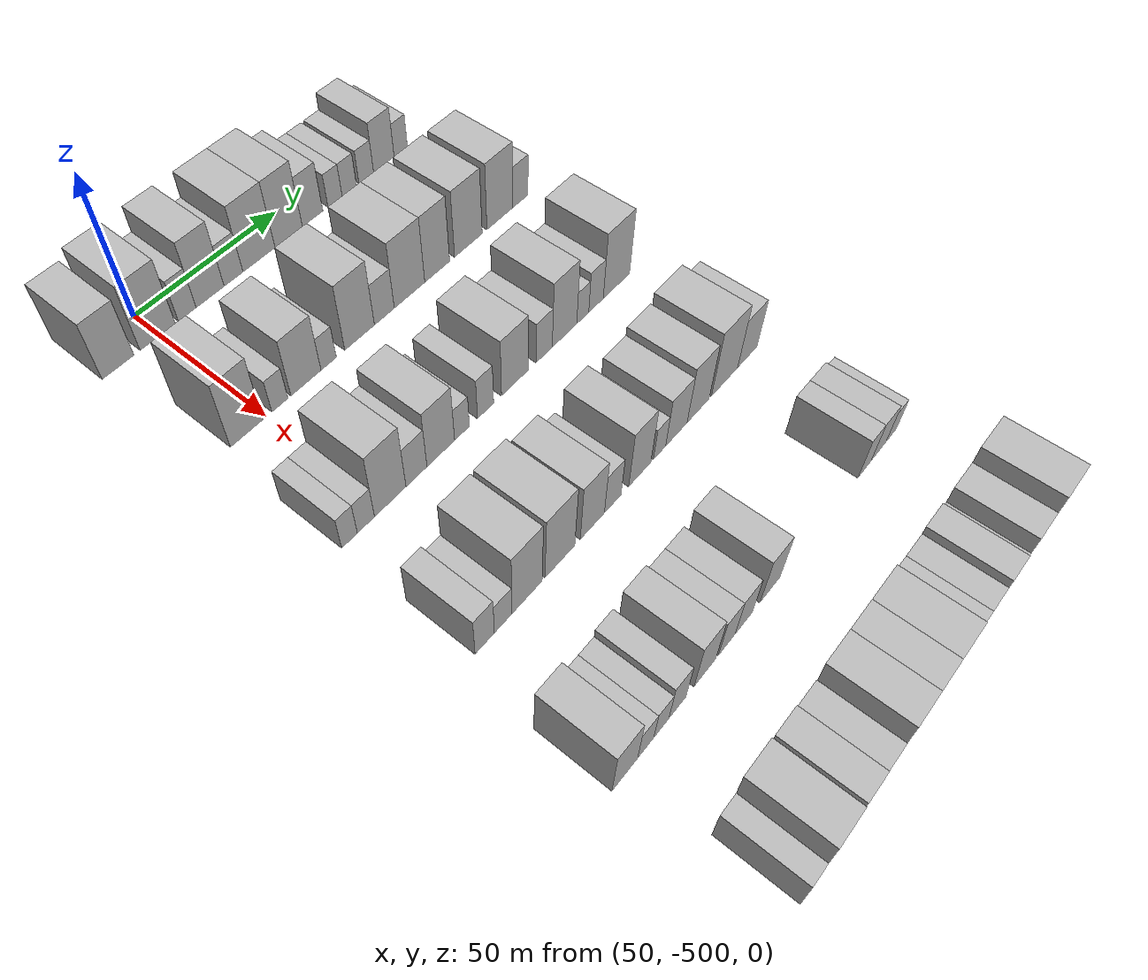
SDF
<sdf version="1.6">
 <world name="default">
  <model name="building_13">
   <static>1</static>
   <pose>50.0000 -513.2922 0 0.000000 0.000000 0.000000</pose>
   <link name="link">
    <pose>0 0 10.50 0 0 0</pose>
    <collision name="collision"><geometry><box><size>20.0000 10.0668 21.0000</size></box></geometry></collision>
    <visual name="visual">
     <cast_shadows>0</cast_shadows>
     <geometry><box><size>20.0000 10.0668 21.0000</size></box></geometry>
     <material>
      <script>
       <uri>model://HANNAS_wall/materials/scripts</uri>
       <uri>model://HANNAS_wall/materials/textures</uri>
       <name>vrc/HANNAS_wall</name>
      </script>
     </material>
    </visual>
   </link>
  </model>
  <model name="building_14">
   <static>1</static>
   <pose>50.0000 -500.4689 0 0.000000 0.000000 0.000000</pose>
   <link name="link">
    <pose>0 0 12.00 0 0 0</pose>
    <collision name="collision"><geometry><box><size>20.0000 11.5798 24.0000</size></box></geometry></collision>
    <visual name="visual">
     <cast_shadows>0</cast_shadows>
     <geometry><box><size>20.0000 11.5798 24.0000</size></box></geometry>
     <material>
      <script>
       <uri>model://HANNAS_wall/materials/scripts</uri>
       <uri>model://HANNAS_wall/materials/textures</uri>
       <name>vrc/HANNAS_wall</name>
      </script>
     </material>
    </visual>
   </link>
  </model>
  <model name="building_15">
   <static>1</static>
   <pose>50.0000 -490.6699 0 0.000000 0.000000 0.000000</pose>
   <link name="link">
    <pose>0 0 7.50 0 0 0</pose>
    <collision name="collision"><geometry><box><size>20.0000 6.0181 15.0000</size></box></geometry></collision>
    <visual name="visual">
     <cast_shadows>0</cast_shadows>
     <geometry><box><size>20.0000 6.0181 15.0000</size></box></geometry>
     <material>
      <script>
       <uri>model://HANNAS_wall/materials/scripts</uri>
       <uri>model://HANNAS_wall/materials/textures</uri>
       <name>vrc/HANNAS_wall</name>
      </script>
     </material>
    </visual>
   </link>
  </model>
  <model name="building_16">
   <static>1</static>
   <pose>50.0000 -482.7973 0 0.000000 0.000000 0.000000</pose>
   <link name="link">
    <pose>0 0 12.00 0 0 0</pose>
    <collision name="collision"><geometry><box><size>20.0000 9.7271 24.0000</size></box></geometry></collision>
    <visual name="visual">
     <cast_shadows>0</cast_shadows>
     <geometry><box><size>20.0000 9.7271 24.0000</size></box></geometry>
     <material>
      <script>
       <uri>model://HANNAS_wall/materials/scripts</uri>
       <uri>model://HANNAS_wall/materials/textures</uri>
       <name>vrc/HANNAS_wall</name>
      </script>
     </material>
    </visual>
   </link>
  </model>
  <model name="building_17">
   <static>1</static>
   <pose>50.0000 -474.5949 0 0.000000 0.000000 0.000000</pose>
   <link name="link">
    <pose>0 0 7.50 0 0 0</pose>
    <collision name="collision"><geometry><box><size>20.0000 6.6777 15.0000</size></box></geometry></collision>
    <visual name="visual">
     <cast_shadows>0</cast_shadows>
     <geometry><box><size>20.0000 6.6777 15.0000</size></box></geometry>
     <material>
      <script>
       <uri>model://HANNAS_wall/materials/scripts</uri>
       <uri>model://HANNAS_wall/materials/textures</uri>
       <name>vrc/HANNAS_wall</name>
      </script>
     </material>
    </visual>
   </link>
  </model>
  <model name="building_18">
   <static>1</static>
   <pose>50.0000 -465.4244 0 0.000000 0.000000 0.000000</pose>
   <link name="link">
    <pose>0 0 12.00 0 0 0</pose>
    <collision name="collision"><geometry><box><size>20.0000 11.6633 24.0000</size></box></geometry></collision>
    <visual name="visual">
     <cast_shadows>0</cast_shadows>
     <geometry><box><size>20.0000 11.6633 24.0000</size></box></geometry>
     <material>
      <script>
       <uri>model://HANNAS_wall/materials/scripts</uri>
       <uri>model://HANNAS_wall/materials/textures</uri>
       <name>vrc/HANNAS_wall</name>
      </script>
     </material>
    </visual>
   </link>
  </model>
  <model name="building_19">
   <static>1</static>
   <pose>50.0000 -454.4327 0 0.000000 0.000000 0.000000</pose>
   <link name="link">
    <pose>0 0 12.00 0 0 0</pose>
    <collision name="collision"><geometry><box><size>20.0000 10.3202 24.0000</size></box></geometry></collision>
    <visual name="visual">
     <cast_shadows>0</cast_shadows>
     <geometry><box><size>20.0000 10.3202 24.0000</size></box></geometry>
     <material>
      <script>
       <uri>model://HANNAS_wall/materials/scripts</uri>
       <uri>model://HANNAS_wall/materials/textures</uri>
       <name>vrc/HANNAS_wall</name>
      </script>
     </material>
    </visual>
   </link>
  </model>
  <model name="building_20">
   <static>1</static>
   <pose>50.0000 -445.3321 0 0.000000 0.000000 0.000000</pose>
   <link name="link">
    <pose>0 0 9.00 0 0 0</pose>
    <collision name="collision"><geometry><box><size>20.0000 7.8810 18.0000</size></box></geometry></collision>
    <visual name="visual">
     <cast_shadows>0</cast_shadows>
     <geometry><box><size>20.0000 7.8810 18.0000</size></box></geometry>
     <material>
      <script>
       <uri>model://HANNAS_wall/materials/scripts</uri>
       <uri>model://HANNAS_wall/materials/textures</uri>
       <name>vrc/HANNAS_wall</name>
      </script>
     </material>
    </visual>
   </link>
  </model>
  <model name="building_21">
   <static>1</static>
   <pose>50.0000 -436.5982 0 0.000000 0.000000 0.000000</pose>
   <link name="link">
    <pose>0 0 6.00 0 0 0</pose>
    <collision name="collision"><geometry><box><size>20.0000 5.5867 12.0000</size></box></geometry></collision>
    <visual name="visual">
     <cast_shadows>0</cast_shadows>
     <geometry><box><size>20.0000 5.5867 12.0000</size></box></geometry>
     <material>
      <script>
       <uri>model://HANNAS_wall/materials/scripts</uri>
       <uri>model://HANNAS_wall/materials/textures</uri>
       <name>vrc/HANNAS_wall</name>
      </script>
     </material>
    </visual>
   </link>
  </model>
  <model name="building_22">
   <static>1</static>
   <pose>50.0000 -430.9221 0 0.000000 0.000000 0.000000</pose>
   <link name="link">
    <pose>0 0 6.00 0 0 0</pose>
    <collision name="collision"><geometry><box><size>20.0000 5.7655 12.0000</size></box></geometry></collision>
    <visual name="visual">
     <cast_shadows>0</cast_shadows>
     <geometry><box><size>20.0000 5.7655 12.0000</size></box></geometry>
     <material>
      <script>
       <uri>model://HANNAS_wall/materials/scripts</uri>
       <uri>model://HANNAS_wall/materials/textures</uri>
       <name>vrc/HANNAS_wall</name>
      </script>
     </material>
    </visual>
   </link>
  </model>
  <model name="building_23">
   <static>1</static>
   <pose>50.0000 -424.0507 0 0.000000 0.000000 0.000000</pose>
   <link name="link">
    <pose>0 0 6.00 0 0 0</pose>
    <collision name="collision"><geometry><box><size>20.0000 5.9773 12.0000</size></box></geometry></collision>
    <visual name="visual">
     <cast_shadows>0</cast_shadows>
     <geometry><box><size>20.0000 5.9773 12.0000</size></box></geometry>
     <material>
      <script>
       <uri>model://HANNAS_wall/materials/scripts</uri>
       <uri>model://HANNAS_wall/materials/textures</uri>
       <name>vrc/HANNAS_wall</name>
      </script>
     </material>
    </visual>
   </link>
  </model>
  <model name="building_24">
   <static>1</static>
   <pose>50.0000 -416.7812 0 0.000000 0.000000 0.000000</pose>
   <link name="link">
    <pose>0 0 9.00 0 0 0</pose>
    <collision name="collision"><geometry><box><size>20.0000 8.5616 18.0000</size></box></geometry></collision>
    <visual name="visual">
     <cast_shadows>0</cast_shadows>
     <geometry><box><size>20.0000 8.5616 18.0000</size></box></geometry>
     <material>
      <script>
       <uri>model://HANNAS_wall/materials/scripts</uri>
       <uri>model://HANNAS_wall/materials/textures</uri>
       <name>vrc/HANNAS_wall</name>
      </script>
     </material>
    </visual>
   </link>
  </model>
  <model name="building_25">
   <static>1</static>
   <pose>50.0000 -409.6881 0 0.000000 0.000000 0.000000</pose>
   <link name="link">
    <pose>0 0 6.00 0 0 0</pose>
    <collision name="collision"><geometry><box><size>20.0000 5.6246 12.0000</size></box></geometry></collision>
    <visual name="visual">
     <cast_shadows>0</cast_shadows>
     <geometry><box><size>20.0000 5.6246 12.0000</size></box></geometry>
     <material>
      <script>
       <uri>model://HANNAS_wall/materials/scripts</uri>
       <uri>model://HANNAS_wall/materials/textures</uri>
       <name>vrc/HANNAS_wall</name>
      </script>
     </material>
    </visual>
   </link>
  </model>
  <model name="building_149">
   <static>1</static>
   <pose>90.0000 -506.4445 0 0.000000 0.000000 0.000000</pose>
   <link name="link">
    <pose>0 0 12.00 0 0 0</pose>
    <collision name="collision"><geometry><box><size>20.0000 10.4955 24.0000</size></box></geometry></collision>
    <visual name="visual">
     <cast_shadows>0</cast_shadows>
     <geometry><box><size>20.0000 10.4955 24.0000</size></box></geometry>
     <material>
      <script>
       <uri>model://HANNAS_wall/materials/scripts</uri>
       <uri>model://HANNAS_wall/materials/textures</uri>
       <name>vrc/HANNAS_wall</name>
      </script>
     </material>
    </visual>
   </link>
  </model>
  <model name="building_150">
   <static>1</static>
   <pose>90.0000 -495.4937 0 0.000000 0.000000 0.000000</pose>
   <link name="link">
    <pose>0 0 6.00 0 0 0</pose>
    <collision name="collision"><geometry><box><size>20.0000 5.4061 12.0000</size></box></geometry></collision>
    <visual name="visual">
     <cast_shadows>0</cast_shadows>
     <geometry><box><size>20.0000 5.4061 12.0000</size></box></geometry>
     <material>
      <script>
       <uri>model://HANNAS_wall/materials/scripts</uri>
       <uri>model://HANNAS_wall/materials/textures</uri>
       <name>vrc/HANNAS_wall</name>
      </script>
     </material>
    </visual>
   </link>
  </model>
  <model name="building_151">
   <static>1</static>
   <pose>90.0000 -486.6081 0 0.000000 0.000000 0.000000</pose>
   <link name="link">
    <pose>0 0 10.50 0 0 0</pose>
    <collision name="collision"><geometry><box><size>20.0000 10.3650 21.0000</size></box></geometry></collision>
    <visual name="visual">
     <cast_shadows>0</cast_shadows>
     <geometry><box><size>20.0000 10.3650 21.0000</size></box></geometry>
     <material>
      <script>
       <uri>model://HANNAS_wall/materials/scripts</uri>
       <uri>model://HANNAS_wall/materials/textures</uri>
       <name>vrc/HANNAS_wall</name>
      </script>
     </material>
    </visual>
   </link>
  </model>
  <model name="building_152">
   <static>1</static>
   <pose>90.0000 -478.7184 0 0.000000 0.000000 0.000000</pose>
   <link name="link">
    <pose>0 0 6.00 0 0 0</pose>
    <collision name="collision"><geometry><box><size>20.0000 5.4144 12.0000</size></box></geometry></collision>
    <visual name="visual">
     <cast_shadows>0</cast_shadows>
     <geometry><box><size>20.0000 5.4144 12.0000</size></box></geometry>
     <material>
      <script>
       <uri>model://HANNAS_wall/materials/scripts</uri>
       <uri>model://HANNAS_wall/materials/textures</uri>
       <name>vrc/HANNAS_wall</name>
      </script>
     </material>
    </visual>
   </link>
  </model>
  <model name="building_153">
   <static>1</static>
   <pose>90.0000 -467.5910 0 0.000000 0.000000 0.000000</pose>
   <link name="link">
    <pose>0 0 12.00 0 0 0</pose>
    <collision name="collision"><geometry><box><size>20.0000 10.8404 24.0000</size></box></geometry></collision>
    <visual name="visual">
     <cast_shadows>0</cast_shadows>
     <geometry><box><size>20.0000 10.8404 24.0000</size></box></geometry>
     <material>
      <script>
       <uri>model://HANNAS_wall/materials/scripts</uri>
       <uri>model://HANNAS_wall/materials/textures</uri>
       <name>vrc/HANNAS_wall</name>
      </script>
     </material>
    </visual>
   </link>
  </model>
  <model name="building_154">
   <static>1</static>
   <pose>90.0000 -458.4477 0 0.000000 0.000000 0.000000</pose>
   <link name="link">
    <pose>0 0 7.50 0 0 0</pose>
    <collision name="collision"><geometry><box><size>20.0000 7.4461 15.0000</size></box></geometry></collision>
    <visual name="visual">
     <cast_shadows>0</cast_shadows>
     <geometry><box><size>20.0000 7.4461 15.0000</size></box></geometry>
     <material>
      <script>
       <uri>model://HANNAS_wall/materials/scripts</uri>
       <uri>model://HANNAS_wall/materials/textures</uri>
       <name>vrc/HANNAS_wall</name>
      </script>
     </material>
    </visual>
   </link>
  </model>
  <model name="building_155">
   <static>1</static>
   <pose>90.0000 -448.8370 0 0.000000 0.000000 0.000000</pose>
   <link name="link">
    <pose>0 0 12.00 0 0 0</pose>
    <collision name="collision"><geometry><box><size>20.0000 11.7753 24.0000</size></box></geometry></collision>
    <visual name="visual">
     <cast_shadows>0</cast_shadows>
     <geometry><box><size>20.0000 11.7753 24.0000</size></box></geometry>
     <material>
      <script>
       <uri>model://HANNAS_wall/materials/scripts</uri>
       <uri>model://HANNAS_wall/materials/textures</uri>
       <name>vrc/HANNAS_wall</name>
      </script>
     </material>
    </visual>
   </link>
  </model>
  <model name="building_156">
   <static>1</static>
   <pose>90.0000 -438.0032 0 0.000000 0.000000 0.000000</pose>
   <link name="link">
    <pose>0 0 12.00 0 0 0</pose>
    <collision name="collision"><geometry><box><size>20.0000 9.8923 24.0000</size></box></geometry></collision>
    <visual name="visual">
     <cast_shadows>0</cast_shadows>
     <geometry><box><size>20.0000 9.8923 24.0000</size></box></geometry>
     <material>
      <script>
       <uri>model://HANNAS_wall/materials/scripts</uri>
       <uri>model://HANNAS_wall/materials/textures</uri>
       <name>vrc/HANNAS_wall</name>
      </script>
     </material>
    </visual>
   </link>
  </model>
  <model name="building_157">
   <static>1</static>
   <pose>90.0000 -425.3651 0 0.000000 0.000000 0.000000</pose>
   <link name="link">
    <pose>0 0 12.00 0 0 0</pose>
    <collision name="collision"><geometry><box><size>20.0000 11.3839 24.0000</size></box></geometry></collision>
    <visual name="visual">
     <cast_shadows>0</cast_shadows>
     <geometry><box><size>20.0000 11.3839 24.0000</size></box></geometry>
     <material>
      <script>
       <uri>model://HANNAS_wall/materials/scripts</uri>
       <uri>model://HANNAS_wall/materials/textures</uri>
       <name>vrc/HANNAS_wall</name>
      </script>
     </material>
    </visual>
   </link>
  </model>
  <model name="building_158">
   <static>1</static>
   <pose>90.0000 -412.0996 0 0.000000 0.000000 0.000000</pose>
   <link name="link">
    <pose>0 0 12.00 0 0 0</pose>
    <collision name="collision"><geometry><box><size>20.0000 11.1470 24.0000</size></box></geometry></collision>
    <visual name="visual">
     <cast_shadows>0</cast_shadows>
     <geometry><box><size>20.0000 11.1470 24.0000</size></box></geometry>
     <material>
      <script>
       <uri>model://HANNAS_wall/materials/scripts</uri>
       <uri>model://HANNAS_wall/materials/textures</uri>
       <name>vrc/HANNAS_wall</name>
      </script>
     </material>
    </visual>
   </link>
  </model>
  <model name="building_159">
   <static>1</static>
   <pose>90.0000 -403.2334 0 0.000000 0.000000 0.000000</pose>
   <link name="link">
    <pose>0 0 7.50 0 0 0</pose>
    <collision name="collision"><geometry><box><size>20.0000 6.5855 15.0000</size></box></geometry></collision>
    <visual name="visual">
     <cast_shadows>0</cast_shadows>
     <geometry><box><size>20.0000 6.5855 15.0000</size></box></geometry>
     <material>
      <script>
       <uri>model://HANNAS_wall/materials/scripts</uri>
       <uri>model://HANNAS_wall/materials/textures</uri>
       <name>vrc/HANNAS_wall</name>
      </script>
     </material>
    </visual>
   </link>
  </model>
  <model name="building_289">
   <static>1</static>
   <pose>130.0000 -511.7369 0 0.000000 0.000000 0.000000</pose>
   <link name="link">
    <pose>0 0 6.00 0 0 0</pose>
    <collision name="collision"><geometry><box><size>20.0000 5.0242 12.0000</size></box></geometry></collision>
    <visual name="visual">
     <cast_shadows>0</cast_shadows>
     <geometry><box><size>20.0000 5.0242 12.0000</size></box></geometry>
     <material>
      <script>
       <uri>model://HANNAS_wall/materials/scripts</uri>
       <uri>model://HANNAS_wall/materials/textures</uri>
       <name>vrc/HANNAS_wall</name>
      </script>
     </material>
    </visual>
   </link>
  </model>
  <model name="building_290">
   <static>1</static>
   <pose>130.0000 -506.4150 0 0.000000 0.000000 0.000000</pose>
   <link name="link">
    <pose>0 0 6.00 0 0 0</pose>
    <collision name="collision"><geometry><box><size>20.0000 5.6196 12.0000</size></box></geometry></collision>
    <visual name="visual">
     <cast_shadows>0</cast_shadows>
     <geometry><box><size>20.0000 5.6196 12.0000</size></box></geometry>
     <material>
      <script>
       <uri>model://HANNAS_wall/materials/scripts</uri>
       <uri>model://HANNAS_wall/materials/textures</uri>
       <name>vrc/HANNAS_wall</name>
      </script>
     </material>
    </visual>
   </link>
  </model>
  <model name="building_291">
   <static>1</static>
   <pose>130.0000 -498.3306 0 0.000000 0.000000 0.000000</pose>
   <link name="link">
    <pose>0 0 12.00 0 0 0</pose>
    <collision name="collision"><geometry><box><size>20.0000 10.5493 24.0000</size></box></geometry></collision>
    <visual name="visual">
     <cast_shadows>0</cast_shadows>
     <geometry><box><size>20.0000 10.5493 24.0000</size></box></geometry>
     <material>
      <script>
       <uri>model://HANNAS_wall/materials/scripts</uri>
       <uri>model://HANNAS_wall/materials/textures</uri>
       <name>vrc/HANNAS_wall</name>
      </script>
     </material>
    </visual>
   </link>
  </model>
  <model name="building_292">
   <static>1</static>
   <pose>130.0000 -489.4252 0 0.000000 0.000000 0.000000</pose>
   <link name="link">
    <pose>0 0 7.50 0 0 0</pose>
    <collision name="collision"><geometry><box><size>20.0000 7.2615 15.0000</size></box></geometry></collision>
    <visual name="visual">
     <cast_shadows>0</cast_shadows>
     <geometry><box><size>20.0000 7.2615 15.0000</size></box></geometry>
     <material>
      <script>
       <uri>model://HANNAS_wall/materials/scripts</uri>
       <uri>model://HANNAS_wall/materials/textures</uri>
       <name>vrc/HANNAS_wall</name>
      </script>
     </material>
    </visual>
   </link>
  </model>
  <model name="building_293">
   <static>1</static>
   <pose>130.0000 -480.8790 0 0.000000 0.000000 0.000000</pose>
   <link name="link">
    <pose>0 0 10.50 0 0 0</pose>
    <collision name="collision"><geometry><box><size>20.0000 9.8309 21.0000</size></box></geometry></collision>
    <visual name="visual">
     <cast_shadows>0</cast_shadows>
     <geometry><box><size>20.0000 9.8309 21.0000</size></box></geometry>
     <material>
      <script>
       <uri>model://HANNAS_wall/materials/scripts</uri>
       <uri>model://HANNAS_wall/materials/textures</uri>
       <name>vrc/HANNAS_wall</name>
      </script>
     </material>
    </visual>
   </link>
  </model>
  <model name="building_294">
   <static>1</static>
   <pose>130.0000 -473.2866 0 0.000000 0.000000 0.000000</pose>
   <link name="link">
    <pose>0 0 6.00 0 0 0</pose>
    <collision name="collision"><geometry><box><size>20.0000 5.3539 12.0000</size></box></geometry></collision>
    <visual name="visual">
     <cast_shadows>0</cast_shadows>
     <geometry><box><size>20.0000 5.3539 12.0000</size></box></geometry>
     <material>
      <script>
       <uri>model://HANNAS_wall/materials/scripts</uri>
       <uri>model://HANNAS_wall/materials/textures</uri>
       <name>vrc/HANNAS_wall</name>
      </script>
     </material>
    </visual>
   </link>
  </model>
  <model name="building_295">
   <static>1</static>
   <pose>130.0000 -464.5942 0 0.000000 0.000000 0.000000</pose>
   <link name="link">
    <pose>0 0 7.50 0 0 0</pose>
    <collision name="collision"><geometry><box><size>20.0000 6.0310 15.0000</size></box></geometry></collision>
    <visual name="visual">
     <cast_shadows>0</cast_shadows>
     <geometry><box><size>20.0000 6.0310 15.0000</size></box></geometry>
     <material>
      <script>
       <uri>model://HANNAS_wall/materials/scripts</uri>
       <uri>model://HANNAS_wall/materials/textures</uri>
       <name>vrc/HANNAS_wall</name>
      </script>
     </material>
    </visual>
   </link>
  </model>
  <model name="building_296">
   <static>1</static>
   <pose>130.0000 -453.3522 0 0.000000 0.000000 0.000000</pose>
   <link name="link">
    <pose>0 0 10.50 0 0 0</pose>
    <collision name="collision"><geometry><box><size>20.0000 10.4529 21.0000</size></box></geometry></collision>
    <visual name="visual">
     <cast_shadows>0</cast_shadows>
     <geometry><box><size>20.0000 10.4529 21.0000</size></box></geometry>
     <material>
      <script>
       <uri>model://HANNAS_wall/materials/scripts</uri>
       <uri>model://HANNAS_wall/materials/textures</uri>
       <name>vrc/HANNAS_wall</name>
      </script>
     </material>
    </visual>
   </link>
  </model>
  <model name="building_297">
   <static>1</static>
   <pose>130.0000 -441.8769 0 0.000000 0.000000 0.000000</pose>
   <link name="link">
    <pose>0 0 7.50 0 0 0</pose>
    <collision name="collision"><geometry><box><size>20.0000 6.4976 15.0000</size></box></geometry></collision>
    <visual name="visual">
     <cast_shadows>0</cast_shadows>
     <geometry><box><size>20.0000 6.4976 15.0000</size></box></geometry>
     <material>
      <script>
       <uri>model://HANNAS_wall/materials/scripts</uri>
       <uri>model://HANNAS_wall/materials/textures</uri>
       <name>vrc/HANNAS_wall</name>
      </script>
     </material>
    </visual>
   </link>
  </model>
  <model name="building_298">
   <static>1</static>
   <pose>130.0000 -433.5848 0 0.000000 0.000000 0.000000</pose>
   <link name="link">
    <pose>0 0 12.00 0 0 0</pose>
    <collision name="collision"><geometry><box><size>20.0000 10.0865 24.0000</size></box></geometry></collision>
    <visual name="visual">
     <cast_shadows>0</cast_shadows>
     <geometry><box><size>20.0000 10.0865 24.0000</size></box></geometry>
     <material>
      <script>
       <uri>model://HANNAS_wall/materials/scripts</uri>
       <uri>model://HANNAS_wall/materials/textures</uri>
       <name>vrc/HANNAS_wall</name>
      </script>
     </material>
    </visual>
   </link>
  </model>
  <model name="building_299">
   <static>1</static>
   <pose>130.0000 -426.0183 0 0.000000 0.000000 0.000000</pose>
   <link name="link">
    <pose>0 0 6.00 0 0 0</pose>
    <collision name="collision"><geometry><box><size>20.0000 5.0465 12.0000</size></box></geometry></collision>
    <visual name="visual">
     <cast_shadows>0</cast_shadows>
     <geometry><box><size>20.0000 5.0465 12.0000</size></box></geometry>
     <material>
      <script>
       <uri>model://HANNAS_wall/materials/scripts</uri>
       <uri>model://HANNAS_wall/materials/textures</uri>
       <name>vrc/HANNAS_wall</name>
      </script>
     </material>
    </visual>
   </link>
  </model>
  <model name="building_300">
   <static>1</static>
   <pose>130.0000 -420.3843 0 0.000000 0.000000 0.000000</pose>
   <link name="link">
    <pose>0 0 7.50 0 0 0</pose>
    <collision name="collision"><geometry><box><size>20.0000 6.2215 15.0000</size></box></geometry></collision>
    <visual name="visual">
     <cast_shadows>0</cast_shadows>
     <geometry><box><size>20.0000 6.2215 15.0000</size></box></geometry>
     <material>
      <script>
       <uri>model://HANNAS_wall/materials/scripts</uri>
       <uri>model://HANNAS_wall/materials/textures</uri>
       <name>vrc/HANNAS_wall</name>
      </script>
     </material>
    </visual>
   </link>
  </model>
  <model name="building_301">
   <static>1</static>
   <pose>130.0000 -411.5035 0 0.000000 0.000000 0.000000</pose>
   <link name="link">
    <pose>0 0 12.00 0 0 0</pose>
    <collision name="collision"><geometry><box><size>20.0000 11.5402 24.0000</size></box></geometry></collision>
    <visual name="visual">
     <cast_shadows>0</cast_shadows>
     <geometry><box><size>20.0000 11.5402 24.0000</size></box></geometry>
     <material>
      <script>
       <uri>model://HANNAS_wall/materials/scripts</uri>
       <uri>model://HANNAS_wall/materials/textures</uri>
       <name>vrc/HANNAS_wall</name>
      </script>
     </material>
    </visual>
   </link>
  </model>
  <model name="building_430">
   <static>1</static>
   <pose>170.0000 -511.2489 0 0.000000 0.000000 0.000000</pose>
   <link name="link">
    <pose>0 0 7.50 0 0 0</pose>
    <collision name="collision"><geometry><box><size>20.0000 6.3063 15.0000</size></box></geometry></collision>
    <visual name="visual">
     <cast_shadows>0</cast_shadows>
     <geometry><box><size>20.0000 6.3063 15.0000</size></box></geometry>
     <material>
      <script>
       <uri>model://HANNAS_wall/materials/scripts</uri>
       <uri>model://HANNAS_wall/materials/textures</uri>
       <name>vrc/HANNAS_wall</name>
      </script>
     </material>
    </visual>
   </link>
  </model>
  <model name="building_431">
   <static>1</static>
   <pose>170.0000 -505.1378 0 0.000000 0.000000 0.000000</pose>
   <link name="link">
    <pose>0 0 6.00 0 0 0</pose>
    <collision name="collision"><geometry><box><size>20.0000 5.9160 12.0000</size></box></geometry></collision>
    <visual name="visual">
     <cast_shadows>0</cast_shadows>
     <geometry><box><size>20.0000 5.9160 12.0000</size></box></geometry>
     <material>
      <script>
       <uri>model://HANNAS_wall/materials/scripts</uri>
       <uri>model://HANNAS_wall/materials/textures</uri>
       <name>vrc/HANNAS_wall</name>
      </script>
     </material>
    </visual>
   </link>
  </model>
  <model name="building_432">
   <static>1</static>
   <pose>170.0000 -497.0082 0 0.000000 0.000000 0.000000</pose>
   <link name="link">
    <pose>0 0 12.00 0 0 0</pose>
    <collision name="collision"><geometry><box><size>20.0000 10.3432 24.0000</size></box></geometry></collision>
    <visual name="visual">
     <cast_shadows>0</cast_shadows>
     <geometry><box><size>20.0000 10.3432 24.0000</size></box></geometry>
     <material>
      <script>
       <uri>model://HANNAS_wall/materials/scripts</uri>
       <uri>model://HANNAS_wall/materials/textures</uri>
       <name>vrc/HANNAS_wall</name>
      </script>
     </material>
    </visual>
   </link>
  </model>
  <model name="building_433">
   <static>1</static>
   <pose>170.0000 -485.4924 0 0.000000 0.000000 0.000000</pose>
   <link name="link">
    <pose>0 0 12.00 0 0 0</pose>
    <collision name="collision"><geometry><box><size>20.0000 10.6883 24.0000</size></box></geometry></collision>
    <visual name="visual">
     <cast_shadows>0</cast_shadows>
     <geometry><box><size>20.0000 10.6883 24.0000</size></box></geometry>
     <material>
      <script>
       <uri>model://HANNAS_wall/materials/scripts</uri>
       <uri>model://HANNAS_wall/materials/textures</uri>
       <name>vrc/HANNAS_wall</name>
      </script>
     </material>
    </visual>
   </link>
  </model>
  <model name="building_434">
   <static>1</static>
   <pose>170.0000 -473.6528 0 0.000000 0.000000 0.000000</pose>
   <link name="link">
    <pose>0 0 10.50 0 0 0</pose>
    <collision name="collision"><geometry><box><size>20.0000 8.9911 21.0000</size></box></geometry></collision>
    <visual name="visual">
     <cast_shadows>0</cast_shadows>
     <geometry><box><size>20.0000 8.9911 21.0000</size></box></geometry>
     <material>
      <script>
       <uri>model://HANNAS_wall/materials/scripts</uri>
       <uri>model://HANNAS_wall/materials/textures</uri>
       <name>vrc/HANNAS_wall</name>
      </script>
     </material>
    </visual>
   </link>
  </model>
  <model name="building_435">
   <static>1</static>
   <pose>170.0000 -465.9831 0 0.000000 0.000000 0.000000</pose>
   <link name="link">
    <pose>0 0 7.50 0 0 0</pose>
    <collision name="collision"><geometry><box><size>20.0000 6.3483 15.0000</size></box></geometry></collision>
    <visual name="visual">
     <cast_shadows>0</cast_shadows>
     <geometry><box><size>20.0000 6.3483 15.0000</size></box></geometry>
     <material>
      <script>
       <uri>model://HANNAS_wall/materials/scripts</uri>
       <uri>model://HANNAS_wall/materials/textures</uri>
       <name>vrc/HANNAS_wall</name>
      </script>
     </material>
    </visual>
   </link>
  </model>
  <model name="building_436">
   <static>1</static>
   <pose>170.0000 -455.4155 0 0.000000 0.000000 0.000000</pose>
   <link name="link">
    <pose>0 0 10.50 0 0 0</pose>
    <collision name="collision"><geometry><box><size>20.0000 8.7869 21.0000</size></box></geometry></collision>
    <visual name="visual">
     <cast_shadows>0</cast_shadows>
     <geometry><box><size>20.0000 8.7869 21.0000</size></box></geometry>
     <material>
      <script>
       <uri>model://HANNAS_wall/materials/scripts</uri>
       <uri>model://HANNAS_wall/materials/textures</uri>
       <name>vrc/HANNAS_wall</name>
      </script>
     </material>
    </visual>
   </link>
  </model>
  <model name="building_437">
   <static>1</static>
   <pose>170.0000 -447.5308 0 0.000000 0.000000 0.000000</pose>
   <link name="link">
    <pose>0 0 6.00 0 0 0</pose>
    <collision name="collision"><geometry><box><size>20.0000 4.9824 12.0000</size></box></geometry></collision>
    <visual name="visual">
     <cast_shadows>0</cast_shadows>
     <geometry><box><size>20.0000 4.9824 12.0000</size></box></geometry>
     <material>
      <script>
       <uri>model://HANNAS_wall/materials/scripts</uri>
       <uri>model://HANNAS_wall/materials/textures</uri>
       <name>vrc/HANNAS_wall</name>
      </script>
     </material>
    </visual>
   </link>
  </model>
  <model name="building_438">
   <static>1</static>
   <pose>170.0000 -440.5748 0 0.000000 0.000000 0.000000</pose>
   <link name="link">
    <pose>0 0 9.00 0 0 0</pose>
    <collision name="collision"><geometry><box><size>20.0000 8.9297 18.0000</size></box></geometry></collision>
    <visual name="visual">
     <cast_shadows>0</cast_shadows>
     <geometry><box><size>20.0000 8.9297 18.0000</size></box></geometry>
     <material>
      <script>
       <uri>model://HANNAS_wall/materials/scripts</uri>
       <uri>model://HANNAS_wall/materials/textures</uri>
       <name>vrc/HANNAS_wall</name>
      </script>
     </material>
    </visual>
   </link>
  </model>
  <model name="building_439">
   <static>1</static>
   <pose>170.0000 -431.3878 0 0.000000 0.000000 0.000000</pose>
   <link name="link">
    <pose>0 0 10.50 0 0 0</pose>
    <collision name="collision"><geometry><box><size>20.0000 9.4444 21.0000</size></box></geometry></collision>
    <visual name="visual">
     <cast_shadows>0</cast_shadows>
     <geometry><box><size>20.0000 9.4444 21.0000</size></box></geometry>
     <material>
      <script>
       <uri>model://HANNAS_wall/materials/scripts</uri>
       <uri>model://HANNAS_wall/materials/textures</uri>
       <name>vrc/HANNAS_wall</name>
      </script>
     </material>
    </visual>
   </link>
  </model>
  <model name="building_440">
   <static>1</static>
   <pose>170.0000 -419.8407 0 0.000000 0.000000 0.000000</pose>
   <link name="link">
    <pose>0 0 12.00 0 0 0</pose>
    <collision name="collision"><geometry><box><size>20.0000 11.6497 24.0000</size></box></geometry></collision>
    <visual name="visual">
     <cast_shadows>0</cast_shadows>
     <geometry><box><size>20.0000 11.6497 24.0000</size></box></geometry>
     <material>
      <script>
       <uri>model://HANNAS_wall/materials/scripts</uri>
       <uri>model://HANNAS_wall/materials/textures</uri>
       <name>vrc/HANNAS_wall</name>
      </script>
     </material>
    </visual>
   </link>
  </model>
  <model name="building_441">
   <static>1</static>
   <pose>170.0000 -409.5839 0 0.000000 0.000000 0.000000</pose>
   <link name="link">
    <pose>0 0 9.00 0 0 0</pose>
    <collision name="collision"><geometry><box><size>20.0000 8.8640 18.0000</size></box></geometry></collision>
    <visual name="visual">
     <cast_shadows>0</cast_shadows>
     <geometry><box><size>20.0000 8.8640 18.0000</size></box></geometry>
     <material>
      <script>
       <uri>model://HANNAS_wall/materials/scripts</uri>
       <uri>model://HANNAS_wall/materials/textures</uri>
       <name>vrc/HANNAS_wall</name>
      </script>
     </material>
    </visual>
   </link>
  </model>
  <model name="building_562">
   <static>1</static>
   <pose>210.0000 -514.7896 0 0.000000 0.000000 0.000000</pose>
   <link name="link">
    <pose>0 0 9.00 0 0 0</pose>
    <collision name="collision"><geometry><box><size>20.0000 8.5073 18.0000</size></box></geometry></collision>
    <visual name="visual">
     <cast_shadows>0</cast_shadows>
     <geometry><box><size>20.0000 8.5073 18.0000</size></box></geometry>
     <material>
      <script>
       <uri>model://HANNAS_wall/materials/scripts</uri>
       <uri>model://HANNAS_wall/materials/textures</uri>
       <name>vrc/HANNAS_wall</name>
      </script>
     </material>
    </visual>
   </link>
  </model>
  <model name="building_563">
   <static>1</static>
   <pose>210.0000 -507.7759 0 0.000000 0.000000 0.000000</pose>
   <link name="link">
    <pose>0 0 6.00 0 0 0</pose>
    <collision name="collision"><geometry><box><size>20.0000 5.5200 12.0000</size></box></geometry></collision>
    <visual name="visual">
     <cast_shadows>0</cast_shadows>
     <geometry><box><size>20.0000 5.5200 12.0000</size></box></geometry>
     <material>
      <script>
       <uri>model://HANNAS_wall/materials/scripts</uri>
       <uri>model://HANNAS_wall/materials/textures</uri>
       <name>vrc/HANNAS_wall</name>
      </script>
     </material>
    </visual>
   </link>
  </model>
  <model name="building_564">
   <static>1</static>
   <pose>210.0000 -502.3978 0 0.000000 0.000000 0.000000</pose>
   <link name="link">
    <pose>0 0 6.00 0 0 0</pose>
    <collision name="collision"><geometry><box><size>20.0000 5.2363 12.0000</size></box></geometry></collision>
    <visual name="visual">
     <cast_shadows>0</cast_shadows>
     <geometry><box><size>20.0000 5.2363 12.0000</size></box></geometry>
     <material>
      <script>
       <uri>model://HANNAS_wall/materials/scripts</uri>
       <uri>model://HANNAS_wall/materials/textures</uri>
       <name>vrc/HANNAS_wall</name>
      </script>
     </material>
    </visual>
   </link>
  </model>
  <model name="building_565">
   <static>1</static>
   <pose>210.0000 -496.7370 0 0.000000 0.000000 0.000000</pose>
   <link name="link">
    <pose>0 0 7.50 0 0 0</pose>
    <collision name="collision"><geometry><box><size>20.0000 6.0853 15.0000</size></box></geometry></collision>
    <visual name="visual">
     <cast_shadows>0</cast_shadows>
     <geometry><box><size>20.0000 6.0853 15.0000</size></box></geometry>
     <material>
      <script>
       <uri>model://HANNAS_wall/materials/scripts</uri>
       <uri>model://HANNAS_wall/materials/textures</uri>
       <name>vrc/HANNAS_wall</name>
      </script>
     </material>
    </visual>
   </link>
  </model>
  <model name="building_566">
   <static>1</static>
   <pose>210.0000 -486.7022 0 0.000000 0.000000 0.000000</pose>
   <link name="link">
    <pose>0 0 9.00 0 0 0</pose>
    <collision name="collision"><geometry><box><size>20.0000 7.9844 18.0000</size></box></geometry></collision>
    <visual name="visual">
     <cast_shadows>0</cast_shadows>
     <geometry><box><size>20.0000 7.9844 18.0000</size></box></geometry>
     <material>
      <script>
       <uri>model://HANNAS_wall/materials/scripts</uri>
       <uri>model://HANNAS_wall/materials/textures</uri>
       <name>vrc/HANNAS_wall</name>
      </script>
     </material>
    </visual>
   </link>
  </model>
  <model name="building_567">
   <static>1</static>
   <pose>210.0000 -478.5688 0 0.000000 0.000000 0.000000</pose>
   <link name="link">
    <pose>0 0 7.50 0 0 0</pose>
    <collision name="collision"><geometry><box><size>20.0000 6.2824 15.0000</size></box></geometry></collision>
    <visual name="visual">
     <cast_shadows>0</cast_shadows>
     <geometry><box><size>20.0000 6.2824 15.0000</size></box></geometry>
     <material>
      <script>
       <uri>model://HANNAS_wall/materials/scripts</uri>
       <uri>model://HANNAS_wall/materials/textures</uri>
       <name>vrc/HANNAS_wall</name>
      </script>
     </material>
    </visual>
   </link>
  </model>
  <model name="building_568">
   <static>1</static>
   <pose>210.0000 -471.9942 0 0.000000 0.000000 0.000000</pose>
   <link name="link">
    <pose>0 0 7.50 0 0 0</pose>
    <collision name="collision"><geometry><box><size>20.0000 6.8668 15.0000</size></box></geometry></collision>
    <visual name="visual">
     <cast_shadows>0</cast_shadows>
     <geometry><box><size>20.0000 6.8668 15.0000</size></box></geometry>
     <material>
      <script>
       <uri>model://HANNAS_wall/materials/scripts</uri>
       <uri>model://HANNAS_wall/materials/textures</uri>
       <name>vrc/HANNAS_wall</name>
      </script>
     </material>
    </visual>
   </link>
  </model>
  <model name="building_569">
   <static>1</static>
   <pose>210.0000 -461.5207 0 0.000000 0.000000 0.000000</pose>
   <link name="link">
    <pose>0 0 9.00 0 0 0</pose>
    <collision name="collision"><geometry><box><size>20.0000 8.0801 18.0000</size></box></geometry></collision>
    <visual name="visual">
     <cast_shadows>0</cast_shadows>
     <geometry><box><size>20.0000 8.0801 18.0000</size></box></geometry>
     <material>
      <script>
       <uri>model://HANNAS_wall/materials/scripts</uri>
       <uri>model://HANNAS_wall/materials/textures</uri>
       <name>vrc/HANNAS_wall</name>
      </script>
     </material>
    </visual>
   </link>
  </model>
  <model name="building_570">
   <static>1</static>
   <pose>210.0000 -420.4363 0 0.000000 0.000000 0.000000</pose>
   <link name="link">
    <pose>0 0 7.50 0 0 0</pose>
    <collision name="collision"><geometry><box><size>20.0000 6.0296 15.0000</size></box></geometry></collision>
    <visual name="visual">
     <cast_shadows>0</cast_shadows>
     <geometry><box><size>20.0000 6.0296 15.0000</size></box></geometry>
     <material>
      <script>
       <uri>model://HANNAS_wall/materials/scripts</uri>
       <uri>model://HANNAS_wall/materials/textures</uri>
       <name>vrc/HANNAS_wall</name>
      </script>
     </material>
    </visual>
   </link>
  </model>
  <model name="building_571">
   <static>1</static>
   <pose>210.0000 -413.9293 0 0.000000 0.000000 0.000000</pose>
   <link name="link">
    <pose>0 0 7.50 0 0 0</pose>
    <collision name="collision"><geometry><box><size>20.0000 6.9846 15.0000</size></box></geometry></collision>
    <visual name="visual">
     <cast_shadows>0</cast_shadows>
     <geometry><box><size>20.0000 6.9846 15.0000</size></box></geometry>
     <material>
      <script>
       <uri>model://HANNAS_wall/materials/scripts</uri>
       <uri>model://HANNAS_wall/materials/textures</uri>
       <name>vrc/HANNAS_wall</name>
      </script>
     </material>
    </visual>
   </link>
  </model>
  <model name="building_572">
   <static>1</static>
   <pose>210.0000 -407.8544 0 0.000000 0.000000 0.000000</pose>
   <link name="link">
    <pose>0 0 6.00 0 0 0</pose>
    <collision name="collision"><geometry><box><size>20.0000 5.1651 12.0000</size></box></geometry></collision>
    <visual name="visual">
     <cast_shadows>0</cast_shadows>
     <geometry><box><size>20.0000 5.1651 12.0000</size></box></geometry>
     <material>
      <script>
       <uri>model://HANNAS_wall/materials/scripts</uri>
       <uri>model://HANNAS_wall/materials/textures</uri>
       <name>vrc/HANNAS_wall</name>
      </script>
     </material>
    </visual>
   </link>
  </model>
  <model name="building_688">
   <static>1</static>
   <pose>250.0000 -510.6540 0 0.000000 0.000000 0.000000</pose>
   <link name="link">
    <pose>0 0 6.00 0 0 0</pose>
    <collision name="collision"><geometry><box><size>20.0000 5.4694 12.0000</size></box></geometry></collision>
    <visual name="visual">
     <cast_shadows>0</cast_shadows>
     <geometry><box><size>20.0000 5.4694 12.0000</size></box></geometry>
     <material>
      <script>
       <uri>model://HANNAS_wall/materials/scripts</uri>
       <uri>model://HANNAS_wall/materials/textures</uri>
       <name>vrc/HANNAS_wall</name>
      </script>
     </material>
    </visual>
   </link>
  </model>
  <model name="building_689">
   <static>1</static>
   <pose>250.0000 -503.1422 0 0.000000 0.000000 0.000000</pose>
   <link name="link">
    <pose>0 0 10.50 0 0 0</pose>
    <collision name="collision"><geometry><box><size>20.0000 9.5542 21.0000</size></box></geometry></collision>
    <visual name="visual">
     <cast_shadows>0</cast_shadows>
     <geometry><box><size>20.0000 9.5542 21.0000</size></box></geometry>
     <material>
      <script>
       <uri>model://HANNAS_wall/materials/scripts</uri>
       <uri>model://HANNAS_wall/materials/textures</uri>
       <name>vrc/HANNAS_wall</name>
      </script>
     </material>
    </visual>
   </link>
  </model>
  <model name="building_690">
   <static>1</static>
   <pose>250.0000 -492.5078 0 0.000000 0.000000 0.000000</pose>
   <link name="link">
    <pose>0 0 9.00 0 0 0</pose>
    <collision name="collision"><geometry><box><size>20.0000 7.7146 18.0000</size></box></geometry></collision>
    <visual name="visual">
     <cast_shadows>0</cast_shadows>
     <geometry><box><size>20.0000 7.7146 18.0000</size></box></geometry>
     <material>
      <script>
       <uri>model://HANNAS_wall/materials/scripts</uri>
       <uri>model://HANNAS_wall/materials/textures</uri>
       <name>vrc/HANNAS_wall</name>
      </script>
     </material>
    </visual>
   </link>
  </model>
  <model name="building_691">
   <static>1</static>
   <pose>250.0000 -484.0029 0 0.000000 0.000000 0.000000</pose>
   <link name="link">
    <pose>0 0 7.50 0 0 0</pose>
    <collision name="collision"><geometry><box><size>20.0000 7.2952 15.0000</size></box></geometry></collision>
    <visual name="visual">
     <cast_shadows>0</cast_shadows>
     <geometry><box><size>20.0000 7.2952 15.0000</size></box></geometry>
     <material>
      <script>
       <uri>model://HANNAS_wall/materials/scripts</uri>
       <uri>model://HANNAS_wall/materials/textures</uri>
       <name>vrc/HANNAS_wall</name>
      </script>
     </material>
    </visual>
   </link>
  </model>
  <model name="building_692">
   <static>1</static>
   <pose>250.0000 -474.6598 0 0.000000 0.000000 0.000000</pose>
   <link name="link">
    <pose>0 0 10.50 0 0 0</pose>
    <collision name="collision"><geometry><box><size>20.0000 9.3910 21.0000</size></box></geometry></collision>
    <visual name="visual">
     <cast_shadows>0</cast_shadows>
     <geometry><box><size>20.0000 9.3910 21.0000</size></box></geometry>
     <material>
      <script>
       <uri>model://HANNAS_wall/materials/scripts</uri>
       <uri>model://HANNAS_wall/materials/textures</uri>
       <name>vrc/HANNAS_wall</name>
      </script>
     </material>
    </visual>
   </link>
  </model>
  <model name="building_693">
   <static>1</static>
   <pose>250.0000 -465.7606 0 0.000000 0.000000 0.000000</pose>
   <link name="link">
    <pose>0 0 10.50 0 0 0</pose>
    <collision name="collision"><geometry><box><size>20.0000 8.4072 21.0000</size></box></geometry></collision>
    <visual name="visual">
     <cast_shadows>0</cast_shadows>
     <geometry><box><size>20.0000 8.4072 21.0000</size></box></geometry>
     <material>
      <script>
       <uri>model://HANNAS_wall/materials/scripts</uri>
       <uri>model://HANNAS_wall/materials/textures</uri>
       <name>vrc/HANNAS_wall</name>
      </script>
     </material>
    </visual>
   </link>
  </model>
  <model name="building_694">
   <static>1</static>
   <pose>250.0000 -456.4917 0 0.000000 0.000000 0.000000</pose>
   <link name="link">
    <pose>0 0 10.50 0 0 0</pose>
    <collision name="collision"><geometry><box><size>20.0000 10.1305 21.0000</size></box></geometry></collision>
    <visual name="visual">
     <cast_shadows>0</cast_shadows>
     <geometry><box><size>20.0000 10.1305 21.0000</size></box></geometry>
     <material>
      <script>
       <uri>model://HANNAS_wall/materials/scripts</uri>
       <uri>model://HANNAS_wall/materials/textures</uri>
       <name>vrc/HANNAS_wall</name>
      </script>
     </material>
    </visual>
   </link>
  </model>
  <model name="building_695">
   <static>1</static>
   <pose>250.0000 -447.9751 0 0.000000 0.000000 0.000000</pose>
   <link name="link">
    <pose>0 0 7.50 0 0 0</pose>
    <collision name="collision"><geometry><box><size>20.0000 6.9027 15.0000</size></box></geometry></collision>
    <visual name="visual">
     <cast_shadows>0</cast_shadows>
     <geometry><box><size>20.0000 6.9027 15.0000</size></box></geometry>
     <material>
      <script>
       <uri>model://HANNAS_wall/materials/scripts</uri>
       <uri>model://HANNAS_wall/materials/textures</uri>
       <name>vrc/HANNAS_wall</name>
      </script>
     </material>
    </visual>
   </link>
  </model>
  <model name="building_696">
   <static>1</static>
   <pose>250.0000 -441.0712 0 0.000000 0.000000 0.000000</pose>
   <link name="link">
    <pose>0 0 7.50 0 0 0</pose>
    <collision name="collision"><geometry><box><size>20.0000 6.9051 15.0000</size></box></geometry></collision>
    <visual name="visual">
     <cast_shadows>0</cast_shadows>
     <geometry><box><size>20.0000 6.9051 15.0000</size></box></geometry>
     <material>
      <script>
       <uri>model://HANNAS_wall/materials/scripts</uri>
       <uri>model://HANNAS_wall/materials/textures</uri>
       <name>vrc/HANNAS_wall</name>
      </script>
     </material>
    </visual>
   </link>
  </model>
  <model name="building_697">
   <static>1</static>
   <pose>250.0000 -433.8286 0 0.000000 0.000000 0.000000</pose>
   <link name="link">
    <pose>0 0 9.00 0 0 0</pose>
    <collision name="collision"><geometry><box><size>20.0000 7.5800 18.0000</size></box></geometry></collision>
    <visual name="visual">
     <cast_shadows>0</cast_shadows>
     <geometry><box><size>20.0000 7.5800 18.0000</size></box></geometry>
     <material>
      <script>
       <uri>model://HANNAS_wall/materials/scripts</uri>
       <uri>model://HANNAS_wall/materials/textures</uri>
       <name>vrc/HANNAS_wall</name>
      </script>
     </material>
    </visual>
   </link>
  </model>
  <model name="building_698">
   <static>1</static>
   <pose>250.0000 -427.4961 0 0.000000 0.000000 0.000000</pose>
   <link name="link">
    <pose>0 0 6.00 0 0 0</pose>
    <collision name="collision"><geometry><box><size>20.0000 5.0851 12.0000</size></box></geometry></collision>
    <visual name="visual">
     <cast_shadows>0</cast_shadows>
     <geometry><box><size>20.0000 5.0851 12.0000</size></box></geometry>
     <material>
      <script>
       <uri>model://HANNAS_wall/materials/scripts</uri>
       <uri>model://HANNAS_wall/materials/textures</uri>
       <name>vrc/HANNAS_wall</name>
      </script>
     </material>
    </visual>
   </link>
  </model>
  <model name="building_699">
   <static>1</static>
   <pose>250.0000 -420.7680 0 0.000000 0.000000 0.000000</pose>
   <link name="link">
    <pose>0 0 9.00 0 0 0</pose>
    <collision name="collision"><geometry><box><size>20.0000 8.3712 18.0000</size></box></geometry></collision>
    <visual name="visual">
     <cast_shadows>0</cast_shadows>
     <geometry><box><size>20.0000 8.3712 18.0000</size></box></geometry>
     <material>
      <script>
       <uri>model://HANNAS_wall/materials/scripts</uri>
       <uri>model://HANNAS_wall/materials/textures</uri>
       <name>vrc/HANNAS_wall</name>
      </script>
     </material>
    </visual>
   </link>
  </model>
  <model name="building_700">
   <static>1</static>
   <pose>250.0000 -411.2186 0 0.000000 0.000000 0.000000</pose>
   <link name="link">
    <pose>0 0 12.00 0 0 0</pose>
    <collision name="collision"><geometry><box><size>20.0000 10.7276 24.0000</size></box></geometry></collision>
    <visual name="visual">
     <cast_shadows>0</cast_shadows>
     <geometry><box><size>20.0000 10.7276 24.0000</size></box></geometry>
     <material>
      <script>
       <uri>model://HANNAS_wall/materials/scripts</uri>
       <uri>model://HANNAS_wall/materials/textures</uri>
       <name>vrc/HANNAS_wall</name>
      </script>
     </material>
    </visual>
   </link>
  </model>
 </world>
</sdf>
